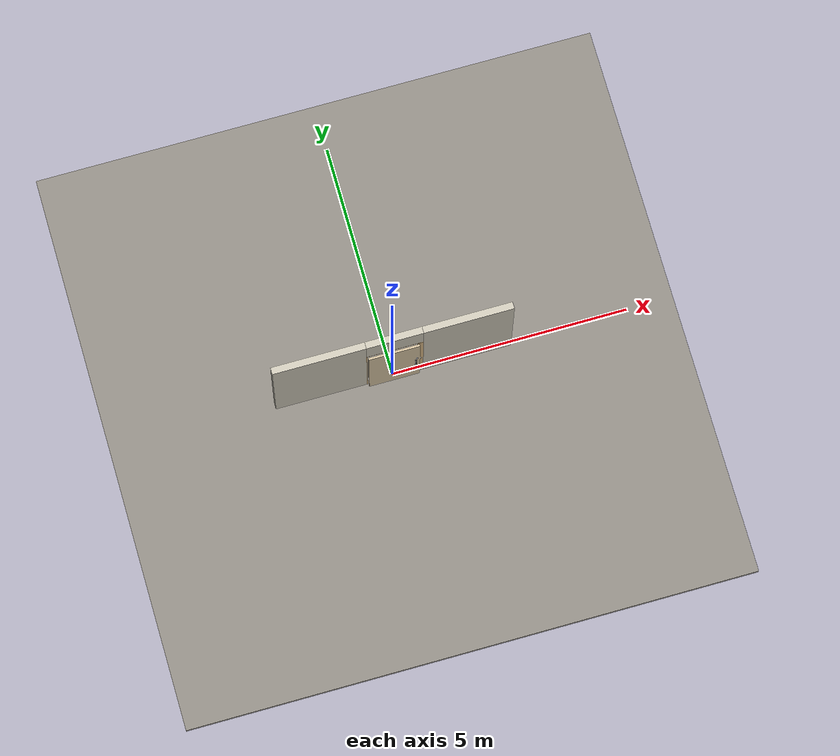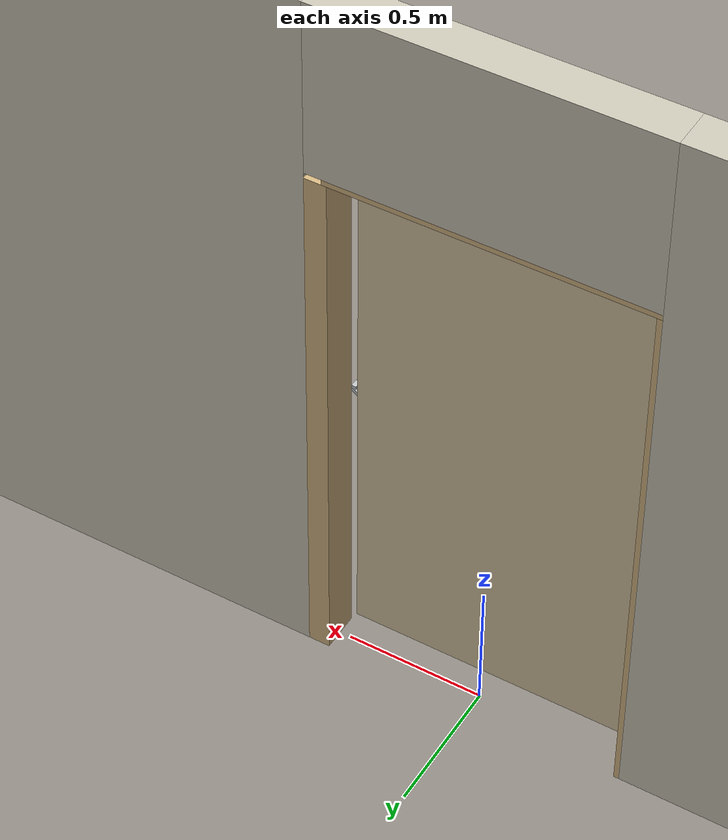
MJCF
<?xml version="1.0" ?>
<mujoco model="db0696_sliding_single_minimal">
  <compiler angle="radian" meshdir="../../hardware" texturedir="../../textures" autolimits="true" inertiafromgeom="false"/>
  <option timestep="0.002" integrator="implicitfast" cone="elliptic" impratio="10" noslip_iterations="3">
    <flag multiccd="enable"/>
  </option>
  <size memory="16M"/>
  <default>
    <geom condim="4" solref="0.005 1" solimp="0.95 0.99 0.001"/>
    <joint solreflimit="0.005 1" solimplimit="0.95 0.99 0.001"/>
    <tendon solreflimit="0.005 1"/>
    <equality solref="0.002 1"/>
  </default>
  <visual>
    <headlight ambient="0.4 0.4 0.4" diffuse="0.7 0.7 0.7" specular="0.2 0.2 0.2"/>
    <quality shadowsize="4096"/>
    <map znear="0.01" zfar="60"/>
  </visual>
  <asset>
    <mesh name="pull_2b47e55ff8" file="pull_2b47e55ff8.obj"/>
    <mesh name="thumbturn_eb5c9899a3" file="thumbturn_eb5c9899a3.obj"/>
    <material name="mat_floor" rgba="0.55 0.53 0.5 1" specular="0.2" shininess="0.15" reflectance="0"/>
    <material name="mat_wall" rgba="0.78 0.76 0.7 1" specular="0.2" shininess="0.1" reflectance="0"/>
    <material name="mat_frame" rgba="0.82 0.7 0.5 1" specular="0.2" shininess="0.45" reflectance="0"/>
    <material name="mat_track" rgba="0.05 0.05 0.05 1" specular="0.38" shininess="0.3" reflectance="0.12"/>
    <material name="mat_leaf" rgba="0.82 0.75 0.62 1" specular="0.2" shininess="0.55" reflectance="0"/>
    <material name="mat_leaf_brace" rgba="0.738 0.675 0.558 1" specular="0.2" shininess="0.2" reflectance="0"/>
    <material name="mat_roller" rgba="0.65 0.66 0.68 1" specular="0.74" shininess="0.5" reflectance="0.36"/>
    <material name="mat_op_black_matte_metal" rgba="0.05 0.05 0.05 1" specular="0.38" shininess="0.3" reflectance="0.12"/>
    <material name="mat_hook" rgba="0.75 0.76 0.77 1" specular="0.8" shininess="0.65" reflectance="0.4"/>
    <texture name="skybox" type="skybox" builtin="gradient" rgb1="0.6 0.7 0.85" rgb2="0.9 0.92 0.95" width="256" height="256"/>
  </asset>
  <worldbody>
    <light name="sun" pos="1.5 -2.5 4" dir="-0.3 0.5 -0.8" directional="true" diffuse="0.8 0.8 0.8" specular="0.3 0.3 0.3" castshadow="true"/>
    <light name="fill" pos="-1.5 2.5 3" dir="0.3 -0.5 -0.7" directional="true" diffuse="0.35 0.35 0.4" castshadow="false"/>
    <camera name="robot_view" pos="0 -2.54875 1.73965" xyaxes="1 0 0 0 0.26963 0.962964" fovy="52"/>
    <camera name="far_view" pos="0 2.54875 1.73965" xyaxes="-1 0 0 0 -0.26963 0.962964" fovy="52"/>
    <camera name="iso" pos="1.93705 -2.14095 2.14745" xyaxes="0.741536 0.670913 0 -0.242917 0.268487 0.932151" fovy="46"/>
    <camera name="detail_handle" pos="0.6235 -0.9815 1.28" xyaxes="0.97561 0.219512 0 -0.070934 0.315262 0.94635" fovy="38"/>
    <geom name="floor" type="box" size="6 6 0.05" pos="0 0 -0.05" material="mat_floor" group="0" contype="1" conaffinity="1" friction="0.8 0.005 0.0001" density="2400"/>
    <geom name="wall_left" type="box" size="0.96875 0.0725 1.35" pos="-1.53125 0 1.35" material="mat_wall" group="0" contype="1" conaffinity="1" friction="0.6 0.005 0.0001" density="800"/>
    <geom name="wall_right" type="box" size="0.93875 0.0725 1.35" pos="1.56125 0 1.35" material="mat_wall" group="0" contype="1" conaffinity="1" friction="0.6 0.005 0.0001" density="800"/>
    <geom name="wall_header" type="box" size="0.5925 0.0725 0.3145" pos="0.03 0 2.3855" material="mat_wall" group="0" contype="1" conaffinity="1" friction="0.6 0.005 0.0001" density="800"/>
    <geom name="jamb_l" type="box" size="0.0095 0.0725 1.026" pos="-0.553 0 1.026" material="mat_frame" group="0" contype="1" conaffinity="1" friction="0.6 0.005 0.0001" density="300"/>
    <geom name="jamb_head" type="box" size="0.5625 0.0725 0.0095" pos="0 0 2.0615" material="mat_frame" group="0" contype="1" conaffinity="1" friction="0.6 0.005 0.0001" density="300"/>
    <geom name="leaf_hook_keeper" type="box" size="0.008 0.015 0.006" pos="0.5515 -0.1145 1.08" material="mat_hook" group="0" contype="1" conaffinity="1" friction="0.6 0.005 0.0001" density="7900"/>
    <geom name="jamb_latch_0" type="box" size="0.0395 0.0725 1.026" pos="0.583 0 1.026" material="mat_frame" group="0" contype="1" conaffinity="1" friction="0.6 0.005 0.0001" density="300"/>
    <site name="approach_point" pos="0 -1.5 0" quat="1 0 0 0" size="0.05" rgba="0.2 0.9 0.2 0.5" group="4"/>
    <site name="goal_point" pos="0 1.5 0" quat="1 0 0 0" size="0.05" rgba="0.2 0.9 0.2 0.5" group="4"/>
    <site name="door_plane_center" pos="0 0 1.026" quat="1 0 0 0" size="0.02" rgba="0.2 0.9 0.2 0.5" group="4"/>
    <body name="leaf" pos="0 -0.1145 0">
      <inertial pos="0.003042 -0.000406 1.027808" mass="72.297758" quat="0.50039 0.499437 -0.500546 0.499626" diaginertia="6.922431558 24.724948869 31.620640039"/>
      <joint name="leaf_slide" type="slide" axis="-1 0 0" limited="true" range="0 1.067" damping="5.627438" frictionloss="14.229204" armature="0.5"/>
      <geom name="leaf_slab" type="box" size="0.5335 0.022 1.016" pos="0 0 1.028" material="mat_leaf" group="0" contype="1" conaffinity="1" friction="0.4 0.005 0.0001" density="1"/>
      <geom name="leaf_pull_n" type="mesh" mesh="pull_2b47e55ff8" pos="0.4435 -0.022 1" quat="0.707107 0.707107 0 0" material="mat_op_black_matte_metal" group="1" contype="0" conaffinity="0" density="3000"/>
      <geom name="leaf_pull_col_n" type="capsule" size="0.006 0.13" pos="0.4435 -0.067 1" material="mat_op_black_matte_metal" group="3" contype="1" conaffinity="1" rgba="0.8 0.3 0.3 0.25" friction="0.7 0.01 0.0001" density="3000"/>
      <site name="leaf_pull_grip_n" pos="0.4435 -0.067 1" quat="1 0 0 0" size="0.012" rgba="0.2 0.9 0.2 0.5" group="4"/>
      <site name="leaf_edge_mid" pos="0.5335 0 1.028" quat="1 0 0 0" size="0.02" rgba="0.2 0.9 0.2 0.5" group="4"/>
      <body name="leaf_hook_thumbturn" pos="0.4735 -0.022 1.22">
        <inertial pos="0 -0.012928 0" mass="0.178946" quat="0.678504 0.199079 -0.199079 -0.678504" diaginertia="0.000026045 0.000026215 0.000032438"/>
        <joint name="leaf_hook_thumbturn_hinge" type="hinge" axis="0 1 0" limited="true" range="0 1" damping="0.05" frictionloss="0.25" armature="0.005" ref="1"/>
        <geom name="leaf_hook_tt_mesh" type="mesh" mesh="thumbturn_eb5c9899a3" pos="0 0 0" quat="0.620545 0.620545 0.339005 -0.339005" material="mat_hook" group="0" contype="1" conaffinity="1" friction="0.6 0.005 0.0001" density="7100"/>
        <geom name="leaf_hook_tt_col" type="box" size="0.006 0.012 0.016" pos="0 -0.02 0" quat="0.877583 0 0.479426 0" material="mat_hook" group="3" contype="1" conaffinity="1" rgba="0.8 0.3 0.3 0.25" friction="0.6 0.005 0.0001" density="7100"/>
        <site name="leaf_hook_tt_grip" pos="0 -0.03 0" quat="0.877583 0 0.479426 0" size="0.01" rgba="0.2 0.9 0.2 0.5" group="4"/>
      </body>
      <body name="leaf_hook" pos="0.5335 0 1.08">
        <inertial pos="0.006651 0 -0.027503" mass="0.072048" quat="-0.148813 -0.148813 0.69127 -0.69127" diaginertia="0.000005266 0.00001511 0.000019175"/>
        <joint name="leaf_hook_hinge" type="hinge" axis="0 1 0" limited="true" range="0 1" damping="0.05" frictionloss="0.1" armature="0.005" ref="1"/>
        <geom name="leaf_hook_arm" type="box" size="0.022 0.005 0.006" pos="-0.002657 0 -0.025474" quat="0.877583 0 0.479426 0" material="mat_hook" group="0" contype="1" conaffinity="1" friction="0.6 0.005 0.0001" density="7900"/>
        <geom name="leaf_hook_tip" type="box" size="0.006 0.005 0.016" pos="0.019451 0 -0.030293" quat="0.877583 0 0.479426 0" material="mat_hook" group="0" contype="1" conaffinity="1" friction="0.6 0.005 0.0001" density="7900"/>
      </body>
    </body>
  </worldbody>
  <equality>
    <joint name="leaf_hook_couple" joint1="leaf_hook_hinge" joint2="leaf_hook_thumbturn_hinge" polycoef="0 1 0 0 0" active="true"/>
  </equality>
  <sensor>
    <jointpos name="leaf_slide_pos" joint="leaf_slide"/>
    <jointvel name="leaf_slide_vel" joint="leaf_slide"/>
    <jointpos name="leaf_hook_thumbturn_hinge_pos" joint="leaf_hook_thumbturn_hinge"/>
    <jointvel name="leaf_hook_thumbturn_hinge_vel" joint="leaf_hook_thumbturn_hinge"/>
    <jointpos name="leaf_hook_hinge_pos" joint="leaf_hook_hinge"/>
    <jointvel name="leaf_hook_hinge_vel" joint="leaf_hook_hinge"/>
  </sensor>
</mujoco>
